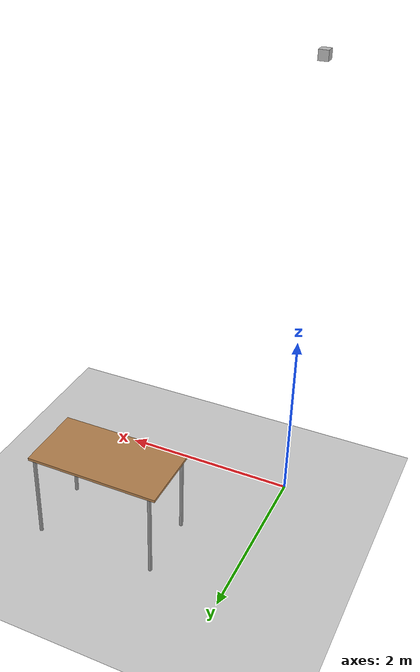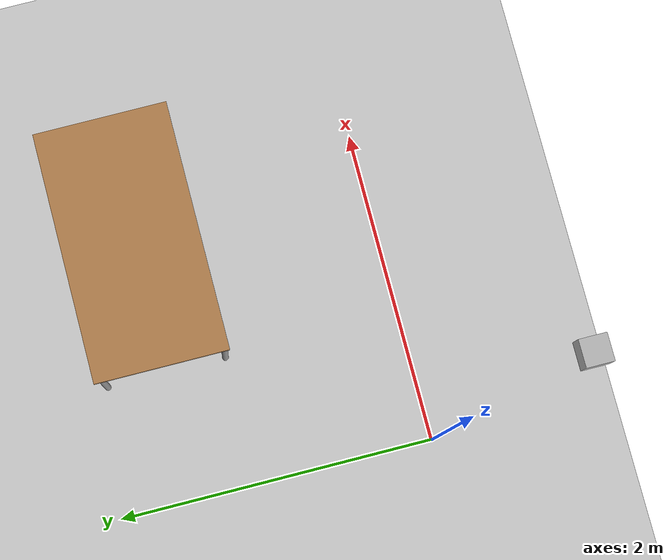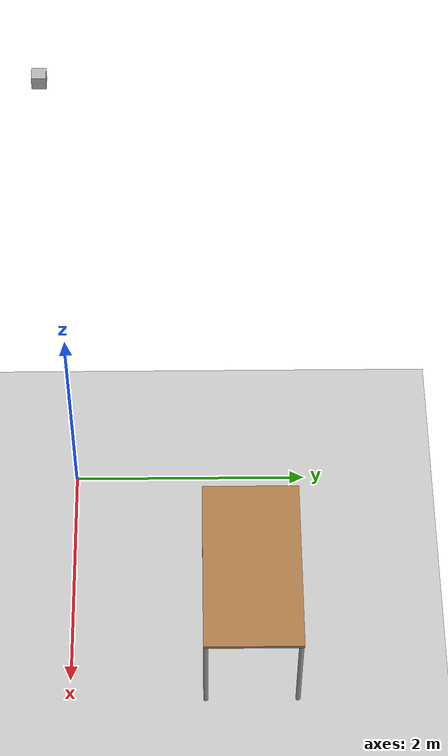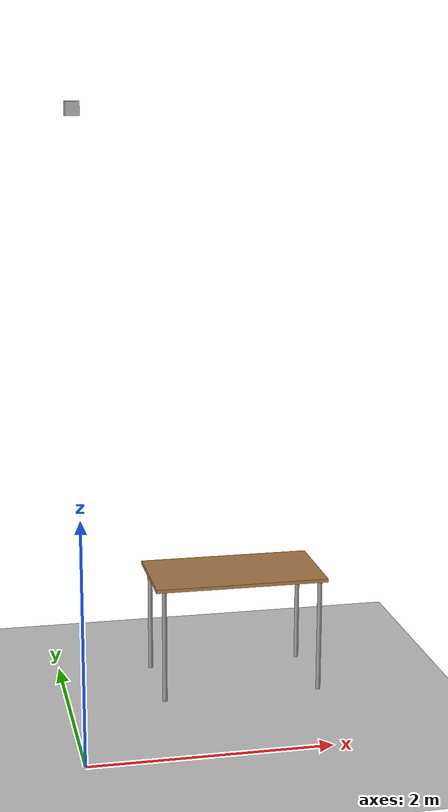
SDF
<sdf version="1.5">
  <world name="custom_world">
    <!-- Add gravity, lighting, or other world properties here -->
    <include>
      <uri>model://ground_plane</uri>
    </include>
    <include>
      <uri>model://sun</uri>
    </include>
    <!-- Add a table -->
    <include>
      <uri>model://table</uri>
      <pose>1.5 1.5 0 0 0 0</pose>
    </include>
    <!-- Add a camera -->
    <include>
      <uri>model://camera</uri>
      <pose>0 0 5 0 0 0</pose>
    </include>
  </world>
</sdf>

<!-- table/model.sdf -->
<sdf version="1.5">
  <model name="table">
    <static>true</static>
    <link name="link">
      <collision name="surface">
        <pose>0 0 1.0 0 0 0</pose>
        <geometry>
          <box>
            <size>1.5 0.8 0.03</size>
          </box>
        </geometry>
        <surface>
          <friction>
            <ode>
              <mu>0.6</mu>
              <mu2>0.6</mu2>
            </ode>
          </friction>
        </surface>
      </collision>
      <visual name="visual1">
        <pose>0 0 1.0 0 0 0</pose>
        <geometry>
          <box>
            <size>1.5 0.8 0.03</size>
          </box>
        </geometry>
        <material>
          <script>
            <uri>model://media/materials/scripts/gazebo.material</uri>
            <name>Gazebo/Wood</name>
          </script>
        </material>
      </visual>
      <collision name="front_left_leg">
        <pose>0.68 0.38 0.5 0 0 0</pose>
        <geometry>
          <cylinder>
            <radius>0.02</radius>
            <length>1.0</length>
          </cylinder>
        </geometry>
      </collision>
      <visual name="front_left_leg">
        <pose>0.68 0.38 0.5 0 0 0</pose>
        <geometry>
          <cylinder>
            <radius>0.02</radius>
            <length>1.0</length>
          </cylinder>
        </geometry>
        <material>
          <script>
            <uri>model://media/materials/scripts/gazebo.material</uri>
            <name>Gazebo/Grey</name>
          </script>
        </material>
      </visual>
      <collision name="front_right_leg">
        <pose>0.68 -0.38 0.5 0 0 0</pose>
        <geometry>
          <cylinder>
            <radius>0.02</radius>
            <length>1.0</length>
          </cylinder>
        </geometry>
      </collision>
      <visual name="front_right_leg">
        <pose>0.68 -0.38 0.5 0 0 0</pose>
        <geometry>
          <cylinder>
            <radius>0.02</radius>
            <length>1.0</length>
          </cylinder>
        </geometry>
        <material>
          <script>
            <uri>model://media/materials/scripts/gazebo.material</uri>
            <name>Gazebo/Grey</name>
          </script>
        </material>
      </visual>
      <collision name="back_right_leg">
        <pose>-0.68 -0.38 0.5 0 0 0</pose>
        <geometry>
          <cylinder>
            <radius>0.02</radius>
            <length>1.0</length>
          </cylinder>
        </geometry>
      </collision>
      <visual name="back_right_leg">
        <pose>-0.68 -0.38 0.5 0 0 0</pose>
        <geometry>
          <cylinder>
            <radius>0.02</radius>
            <length>1.0</length>
          </cylinder>
        </geometry>
        <material>
          <script>
            <uri>model://media/materials/scripts/gazebo.material</uri>
            <name>Gazebo/Grey</name>
          </script>
        </material>
      </visual>
      <collision name="back_left_leg">
        <pose>-0.68 0.38 0.5 0 0 0</pose>
        <geometry>
          <cylinder>
            <radius>0.02</radius>
            <length>1.0</length>
          </cylinder>
        </geometry>
      </collision>
      <visual name="back_left_leg">
        <pose>-0.68 0.38 0.5 0 0 0</pose>
        <geometry>
          <cylinder>
            <radius>0.02</radius>
            <length>1.0</length>
          </cylinder>
        </geometry>
        <material>
          <script>
            <uri>model://media/materials/scripts/gazebo.material</uri>
            <name>Gazebo/Grey</name>
          </script>
        </material>
      </visual>
    </link>
  </model>
</sdf>

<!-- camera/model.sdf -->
<sdf version="1.5">
  <model name="camera">
    <pose>0 0 0.05 0 0 0</pose>
    <link name="link">
      <inertial>
        <mass>0.1</mass>
        <inertia>
          <ixx>0.000166667</ixx>
          <iyy>0.000166667</iyy>
          <izz>0.000166667</izz>
        </inertia>
      </inertial>
      <collision name="collision">
        <geometry>
          <box>
            <size>0.1 0.1 0.1</size>
          </box>
        </geometry>
      </collision>
      <visual name="visual">
        <geometry>
          <box>
            <size>0.1 0.1 0.1</size>
          </box>
        </geometry>
      </visual>
      <sensor name="camera" type="camera">
        <camera>
          <horizontal_fov>1.047</horizontal_fov>
          <image>
            <width>320</width>
            <height>240</height>
          </image>
          <clip>
            <near>0.1</near>
            <far>100</far>
          </clip>
        </camera>
        <always_on>1</always_on>
        <update_rate>30</update_rate>
        <visualize>true</visualize>
      </sensor>
    </link>
  </model>
</sdf>
